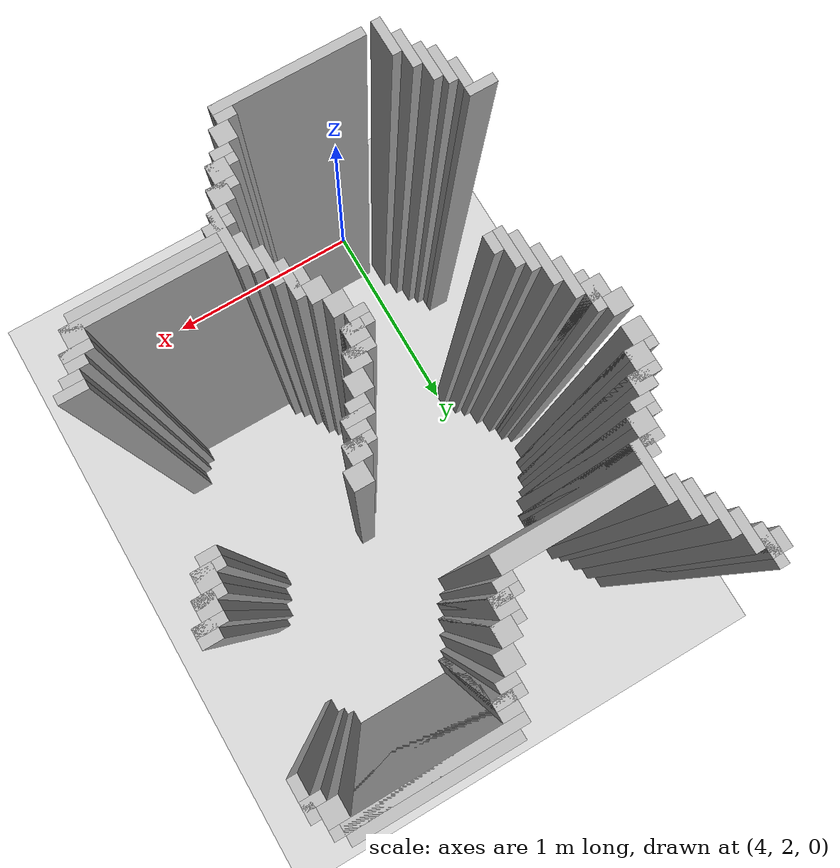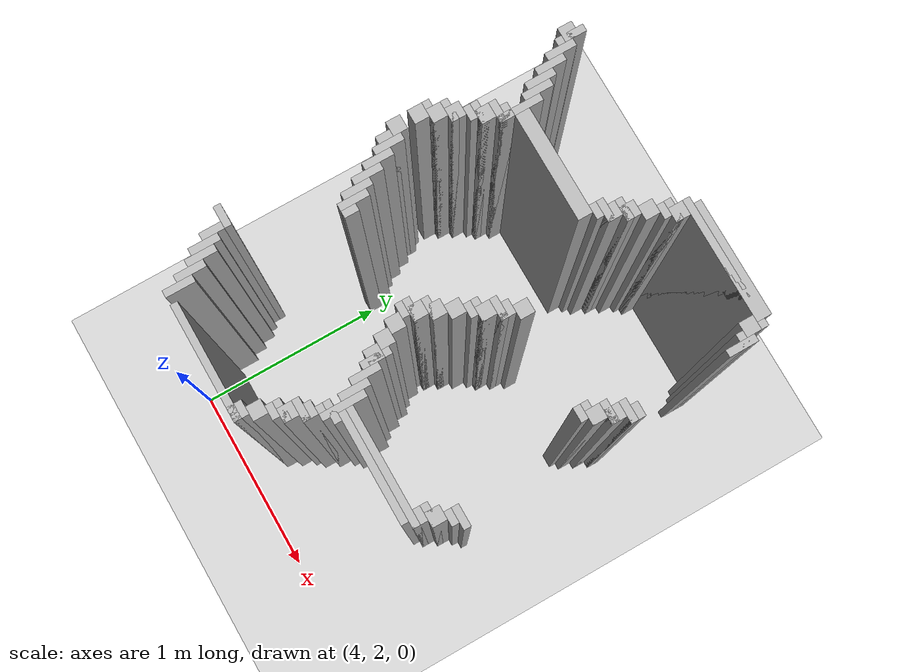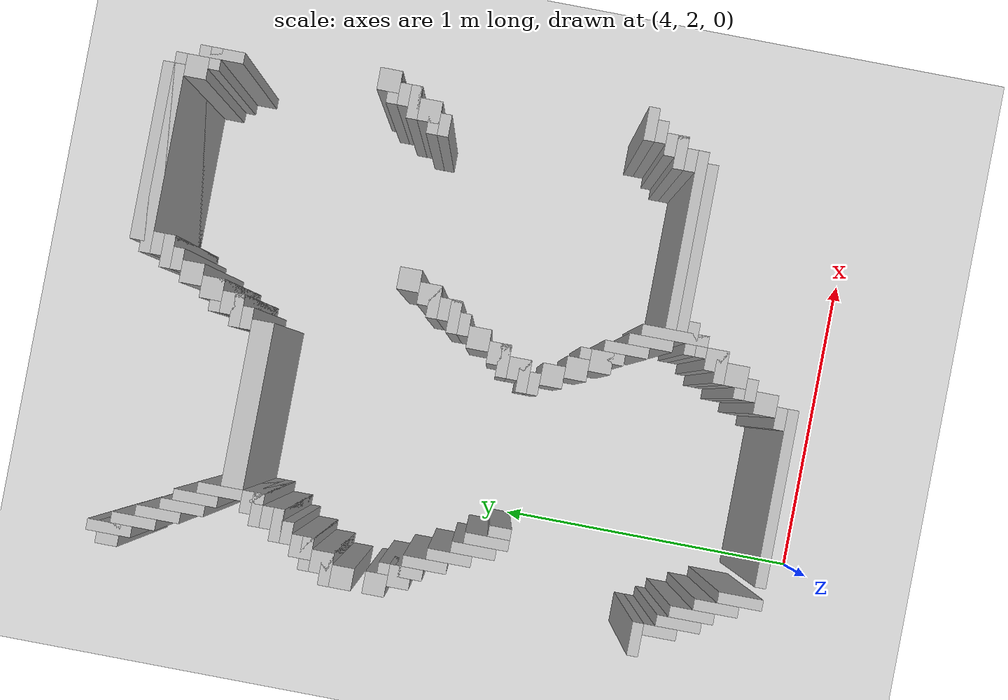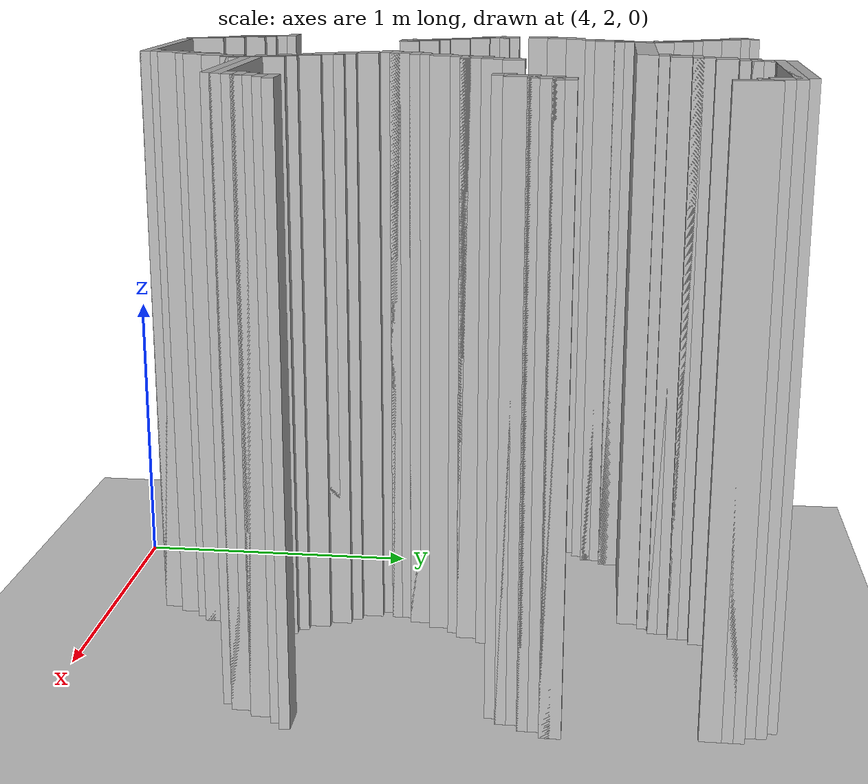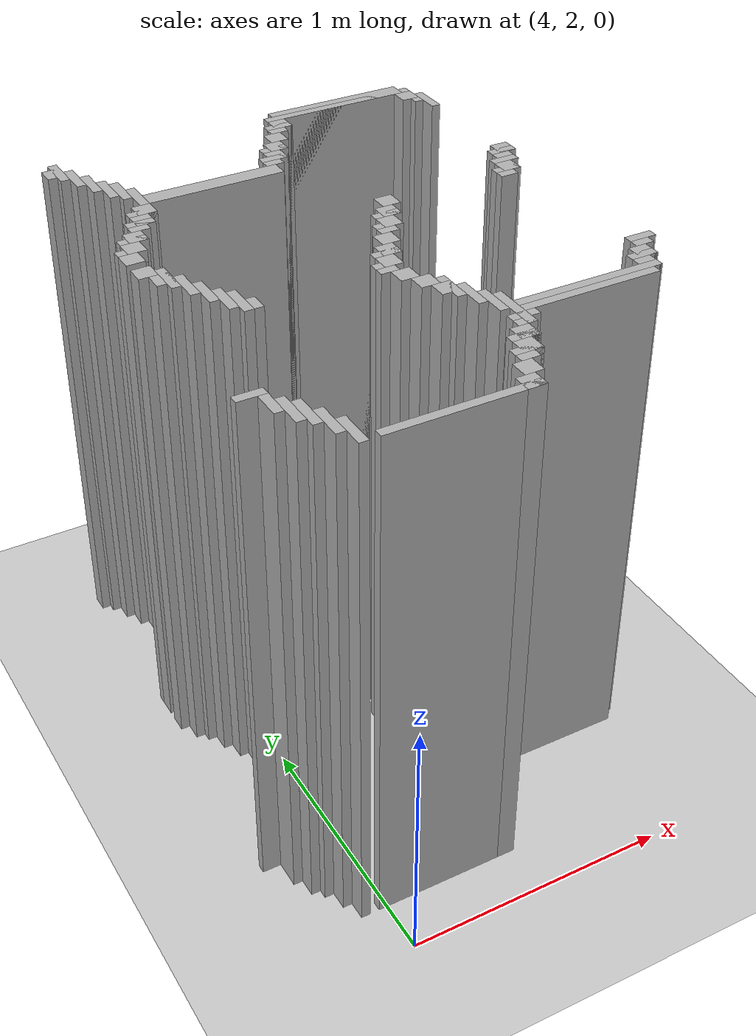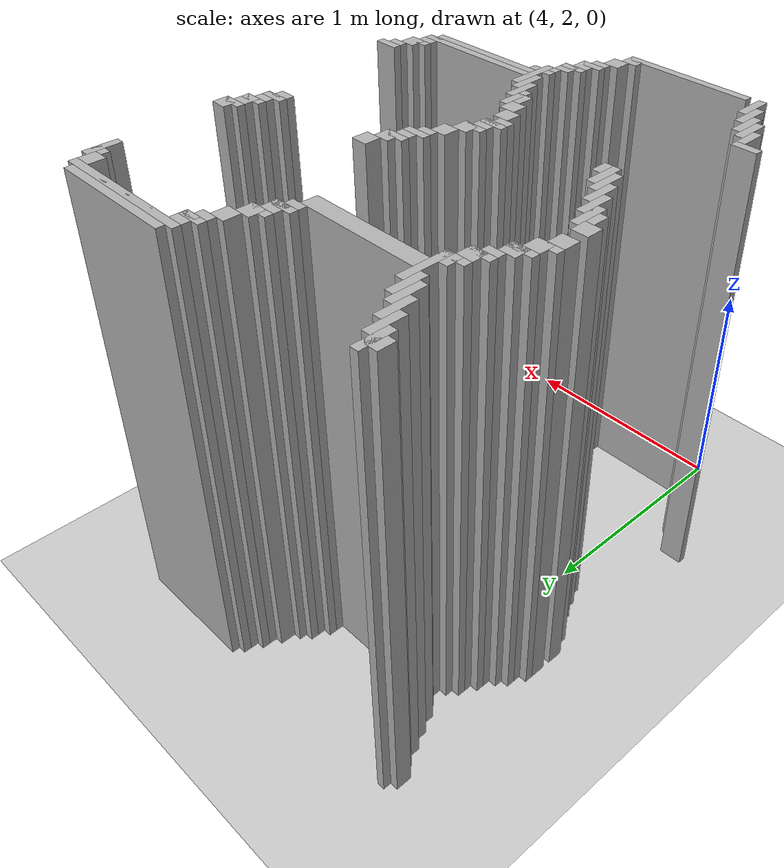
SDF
<sdf version="1.6">
 <world name="slam_world">
  <model name="ground_plane">
   <static>true</static>
   <link name="link">
    <collision name="collision">
     <geometry><plane><normal>0 0 1</normal><size>100 100</size></plane></geometry>
    </collision>
    <visual name="visual">
     <geometry><plane><normal>0 0 1</normal><size>100 100</size></plane></geometry>
     <material>
      <ambient>0.8 0.8 0.8 1</ambient>
      <diffuse>0.8 0.8 0.8 1</diffuse>
      <specular>0.8 0.8 0.8 1</specular>
     </material>
    </visual>
   </link>
  </model>
  <model name="wall_4418">
   <static>true</static>
   <pose>4.94199535962877 4.280742459396752 1.0 0 0 0</pose>
   <link name="link">
    <collision name="collision">
     <geometry><box><size>0.5568445475638051 0.06960556844547564 2.0</size></box></geometry>
    </collision>
    <visual name="visual">
     <geometry><box><size>0.5568445475638051 0.06960556844547564 2.0</size></box></geometry>
     <material><ambient>0.5 0.5 0.5 1</ambient><diffuse>0.7 0.7 0.7 1</diffuse></material>
    </visual>
   </link>
  </model>
  <model name="wall_4431">
   <static>true</static>
   <pose>3.776102088167053 4.211136890951276 1.0 0 0 0</pose>
   <link name="link">
    <collision name="collision">
     <geometry><box><size>0.03480278422273782 0.13921113689095127 2.0</size></box></geometry>
    </collision>
    <visual name="visual">
     <geometry><box><size>0.03480278422273782 0.13921113689095127 2.0</size></box></geometry>
     <material><ambient>0.5 0.5 0.5 1</ambient><diffuse>0.7 0.7 0.7 1</diffuse></material>
    </visual>
   </link>
  </model>
  <model name="wall_4432">
   <static>true</static>
   <pose>4.94199535962877 4.263341067285383 1.0 0 0 0</pose>
   <link name="link">
    <collision name="collision">
     <geometry><box><size>0.6264501160092807 0.03480278422273782 2.0</size></box></geometry>
    </collision>
    <visual name="visual">
     <geometry><box><size>0.6264501160092807 0.03480278422273782 2.0</size></box></geometry>
     <material><ambient>0.5 0.5 0.5 1</ambient><diffuse>0.7 0.7 0.7 1</diffuse></material>
    </visual>
   </link>
  </model>
  <model name="wall_4444">
   <static>true</static>
   <pose>3.7587006960556844 4.211136890951276 1.0 0 0 0</pose>
   <link name="link">
    <collision name="collision">
     <geometry><box><size>0.06960556844547564 0.06960556844547564 2.0</size></box></geometry>
    </collision>
    <visual name="visual">
     <geometry><box><size>0.06960556844547564 0.06960556844547564 2.0</size></box></geometry>
     <material><ambient>0.5 0.5 0.5 1</ambient><diffuse>0.7 0.7 0.7 1</diffuse></material>
    </visual>
   </link>
  </model>
  <model name="wall_4445">
   <static>true</static>
   <pose>4.663573085846868 4.211136890951276 1.0 0 0 0</pose>
   <link name="link">
    <collision name="collision">
     <geometry><box><size>0.06960556844547564 0.06960556844547564 2.0</size></box></geometry>
    </collision>
    <visual name="visual">
     <geometry><box><size>0.06960556844547564 0.06960556844547564 2.0</size></box></geometry>
     <material><ambient>0.5 0.5 0.5 1</ambient><diffuse>0.7 0.7 0.7 1</diffuse></material>
    </visual>
   </link>
  </model>
  <model name="wall_4446">
   <static>true</static>
   <pose>5.220417633410673 4.211136890951276 1.0 0 0 0</pose>
   <link name="link">
    <collision name="collision">
     <geometry><box><size>0.06960556844547564 0.06960556844547564 2.0</size></box></geometry>
    </collision>
    <visual name="visual">
     <geometry><box><size>0.06960556844547564 0.06960556844547564 2.0</size></box></geometry>
     <material><ambient>0.5 0.5 0.5 1</ambient><diffuse>0.7 0.7 0.7 1</diffuse></material>
    </visual>
   </link>
  </model>
  <model name="wall_4459">
   <static>true</static>
   <pose>3.810904872389791 4.1415313225058 1.0 0 0 0</pose>
   <link name="link">
    <collision name="collision">
     <geometry><box><size>0.03480278422273782 0.13921113689095127 2.0</size></box></geometry>
    </collision>
    <visual name="visual">
     <geometry><box><size>0.03480278422273782 0.13921113689095127 2.0</size></box></geometry>
     <material><ambient>0.5 0.5 0.5 1</ambient><diffuse>0.7 0.7 0.7 1</diffuse></material>
    </visual>
   </link>
  </model>
  <model name="wall_4460">
   <static>true</static>
   <pose>4.646171693735498 4.193735498839907 1.0 0 0 0</pose>
   <link name="link">
    <collision name="collision">
     <geometry><box><size>0.10440835266821345 0.03480278422273782 2.0</size></box></geometry>
    </collision>
    <visual name="visual">
     <geometry><box><size>0.10440835266821345 0.03480278422273782 2.0</size></box></geometry>
     <material><ambient>0.5 0.5 0.5 1</ambient><diffuse>0.7 0.7 0.7 1</diffuse></material>
    </visual>
   </link>
  </model>
  <model name="wall_4461">
   <static>true</static>
   <pose>5.27262180974478 4.1415313225058 1.0 0 0 0</pose>
   <link name="link">
    <collision name="collision">
     <geometry><box><size>0.03480278422273782 0.13921113689095127 2.0</size></box></geometry>
    </collision>
    <visual name="visual">
     <geometry><box><size>0.03480278422273782 0.13921113689095127 2.0</size></box></geometry>
     <material><ambient>0.5 0.5 0.5 1</ambient><diffuse>0.7 0.7 0.7 1</diffuse></material>
    </visual>
   </link>
  </model>
  <model name="wall_4474">
   <static>true</static>
   <pose>4.6287703016241295 4.158932714617169 1.0 0 0 0</pose>
   <link name="link">
    <collision name="collision">
     <geometry><box><size>0.06960556844547564 0.03480278422273782 2.0</size></box></geometry>
    </collision>
    <visual name="visual">
     <geometry><box><size>0.06960556844547564 0.03480278422273782 2.0</size></box></geometry>
     <material><ambient>0.5 0.5 0.5 1</ambient><diffuse>0.7 0.7 0.7 1</diffuse></material>
    </visual>
   </link>
  </model>
  <model name="wall_4475">
   <static>true</static>
   <pose>5.25522041763341 4.158932714617169 1.0 0 0 0</pose>
   <link name="link">
    <collision name="collision">
     <geometry><box><size>0.06960556844547564 0.03480278422273782 2.0</size></box></geometry>
    </collision>
    <visual name="visual">
     <geometry><box><size>0.06960556844547564 0.03480278422273782 2.0</size></box></geometry>
     <material><ambient>0.5 0.5 0.5 1</ambient><diffuse>0.7 0.7 0.7 1</diffuse></material>
    </visual>
   </link>
  </model>
  <model name="wall_4484">
   <static>true</static>
   <pose>3.845707656612529 4.071925754060325 1.0 0 0 0</pose>
   <link name="link">
    <collision name="collision">
     <geometry><box><size>0.03480278422273782 0.13921113689095127 2.0</size></box></geometry>
    </collision>
    <visual name="visual">
     <geometry><box><size>0.03480278422273782 0.13921113689095127 2.0</size></box></geometry>
     <material><ambient>0.5 0.5 0.5 1</ambient><diffuse>0.7 0.7 0.7 1</diffuse></material>
    </visual>
   </link>
  </model>
  <model name="wall_4485">
   <static>true</static>
   <pose>4.593967517401392 4.106728538283062 1.0 0 0 0</pose>
   <link name="link">
    <collision name="collision">
     <geometry><box><size>0.06960556844547564 0.06960556844547564 2.0</size></box></geometry>
    </collision>
    <visual name="visual">
     <geometry><box><size>0.06960556844547564 0.06960556844547564 2.0</size></box></geometry>
     <material><ambient>0.5 0.5 0.5 1</ambient><diffuse>0.7 0.7 0.7 1</diffuse></material>
    </visual>
   </link>
  </model>
  <model name="wall_4499">
   <static>true</static>
   <pose>3.8805104408352666 4.002320185614849 1.0 0 0 0</pose>
   <link name="link">
    <collision name="collision">
     <geometry><box><size>0.03480278422273782 0.13921113689095127 2.0</size></box></geometry>
    </collision>
    <visual name="visual">
     <geometry><box><size>0.03480278422273782 0.13921113689095127 2.0</size></box></geometry>
     <material><ambient>0.5 0.5 0.5 1</ambient><diffuse>0.7 0.7 0.7 1</diffuse></material>
    </visual>
   </link>
  </model>
  <model name="wall_4500">
   <static>true</static>
   <pose>4.559164733178654 4.037122969837587 1.0 0 0 0</pose>
   <link name="link">
    <collision name="collision">
     <geometry><box><size>0.06960556844547564 0.06960556844547564 2.0</size></box></geometry>
    </collision>
    <visual name="visual">
     <geometry><box><size>0.06960556844547564 0.06960556844547564 2.0</size></box></geometry>
     <material><ambient>0.5 0.5 0.5 1</ambient><diffuse>0.7 0.7 0.7 1</diffuse></material>
    </visual>
   </link>
  </model>
  <model name="wall_4514">
   <static>true</static>
   <pose>3.9153132250580045 3.967517401392111 1.0 0 0 0</pose>
   <link name="link">
    <collision name="collision">
     <geometry><box><size>0.03480278422273782 0.13921113689095127 2.0</size></box></geometry>
    </collision>
    <visual name="visual">
     <geometry><box><size>0.03480278422273782 0.13921113689095127 2.0</size></box></geometry>
     <material><ambient>0.5 0.5 0.5 1</ambient><diffuse>0.7 0.7 0.7 1</diffuse></material>
    </visual>
   </link>
  </model>
  <model name="wall_4515">
   <static>true</static>
   <pose>4.541763341067285 4.019721577726218 1.0 0 0 0</pose>
   <link name="link">
    <collision name="collision">
     <geometry><box><size>0.10440835266821345 0.03480278422273782 2.0</size></box></geometry>
    </collision>
    <visual name="visual">
     <geometry><box><size>0.10440835266821345 0.03480278422273782 2.0</size></box></geometry>
     <material><ambient>0.5 0.5 0.5 1</ambient><diffuse>0.7 0.7 0.7 1</diffuse></material>
    </visual>
   </link>
  </model>
  <model name="wall_4529">
   <static>true</static>
   <pose>4.524361948955916 3.967517401392111 1.0 0 0 0</pose>
   <link name="link">
    <collision name="collision">
     <geometry><box><size>0.06960556844547564 0.06960556844547564 2.0</size></box></geometry>
    </collision>
    <visual name="visual">
     <geometry><box><size>0.06960556844547564 0.06960556844547564 2.0</size></box></geometry>
     <material><ambient>0.5 0.5 0.5 1</ambient><diffuse>0.7 0.7 0.7 1</diffuse></material>
    </visual>
   </link>
  </model>
  <model name="wall_4537">
   <static>true</static>
   <pose>3.9501160092807424 3.863109048723898 1.0 0 0 0</pose>
   <link name="link">
    <collision name="collision">
     <geometry><box><size>0.03480278422273782 0.2088167053364269 2.0</size></box></geometry>
    </collision>
    <visual name="visual">
     <geometry><box><size>0.03480278422273782 0.2088167053364269 2.0</size></box></geometry>
     <material><ambient>0.5 0.5 0.5 1</ambient><diffuse>0.7 0.7 0.7 1</diffuse></material>
    </visual>
   </link>
  </model>
  <model name="wall_4538">
   <static>true</static>
   <pose>4.506960556844548 3.9501160092807424 1.0 0 0 0</pose>
   <link name="link">
    <collision name="collision">
     <geometry><box><size>0.10440835266821345 0.03480278422273782 2.0</size></box></geometry>
    </collision>
    <visual name="visual">
     <geometry><box><size>0.10440835266821345 0.03480278422273782 2.0</size></box></geometry>
     <material><ambient>0.5 0.5 0.5 1</ambient><diffuse>0.7 0.7 0.7 1</diffuse></material>
    </visual>
   </link>
  </model>
  <model name="wall_4552">
   <static>true</static>
   <pose>4.489559164733178 3.9153132250580045 1.0 0 0 0</pose>
   <link name="link">
    <collision name="collision">
     <geometry><box><size>0.06960556844547564 0.03480278422273782 2.0</size></box></geometry>
    </collision>
    <visual name="visual">
     <geometry><box><size>0.06960556844547564 0.03480278422273782 2.0</size></box></geometry>
     <material><ambient>0.5 0.5 0.5 1</ambient><diffuse>0.7 0.7 0.7 1</diffuse></material>
    </visual>
   </link>
  </model>
  <model name="wall_4561">
   <static>true</static>
   <pose>4.228538283062645 3.863109048723898 1.0 0 0 0</pose>
   <link name="link">
    <collision name="collision">
     <geometry><box><size>0.5220417633410672 0.06960556844547564 2.0</size></box></geometry>
    </collision>
    <visual name="visual">
     <geometry><box><size>0.5220417633410672 0.06960556844547564 2.0</size></box></geometry>
     <material><ambient>0.5 0.5 0.5 1</ambient><diffuse>0.7 0.7 0.7 1</diffuse></material>
    </visual>
   </link>
  </model>
  <model name="wall_4575">
   <static>true</static>
   <pose>3.932714617169373 3.793503480278422 1.0 0 0 0</pose>
   <link name="link">
    <collision name="collision">
     <geometry><box><size>0.06960556844547564 0.06960556844547564 2.0</size></box></geometry>
    </collision>
    <visual name="visual">
     <geometry><box><size>0.06960556844547564 0.06960556844547564 2.0</size></box></geometry>
     <material><ambient>0.5 0.5 0.5 1</ambient><diffuse>0.7 0.7 0.7 1</diffuse></material>
    </visual>
   </link>
  </model>
  <model name="wall_4589">
   <static>true</static>
   <pose>3.9153132250580045 3.776102088167053 1.0 0 0 0</pose>
   <link name="link">
    <collision name="collision">
     <geometry><box><size>0.10440835266821345 0.03480278422273782 2.0</size></box></geometry>
    </collision>
    <visual name="visual">
     <geometry><box><size>0.10440835266821345 0.03480278422273782 2.0</size></box></geometry>
     <material><ambient>0.5 0.5 0.5 1</ambient><diffuse>0.7 0.7 0.7 1</diffuse></material>
    </visual>
   </link>
  </model>
  <model name="wall_4603">
   <static>true</static>
   <pose>3.897911832946636 3.7238979118329465 1.0 0 0 0</pose>
   <link name="link">
    <collision name="collision">
     <geometry><box><size>0.06960556844547564 0.06960556844547564 2.0</size></box></geometry>
    </collision>
    <visual name="visual">
     <geometry><box><size>0.06960556844547564 0.06960556844547564 2.0</size></box></geometry>
     <material><ambient>0.5 0.5 0.5 1</ambient><diffuse>0.7 0.7 0.7 1</diffuse></material>
    </visual>
   </link>
  </model>
  <model name="wall_4617">
   <static>true</static>
   <pose>3.8805104408352666 3.706496519721578 1.0 0 0 0</pose>
   <link name="link">
    <collision name="collision">
     <geometry><box><size>0.10440835266821345 0.03480278422273782 2.0</size></box></geometry>
    </collision>
    <visual name="visual">
     <geometry><box><size>0.10440835266821345 0.03480278422273782 2.0</size></box></geometry>
     <material><ambient>0.5 0.5 0.5 1</ambient><diffuse>0.7 0.7 0.7 1</diffuse></material>
    </visual>
   </link>
  </model>
  <model name="wall_4629">
   <static>true</static>
   <pose>3.863109048723898 3.67169373549884 1.0 0 0 0</pose>
   <link name="link">
    <collision name="collision">
     <geometry><box><size>0.06960556844547564 0.03480278422273782 2.0</size></box></geometry>
    </collision>
    <visual name="visual">
     <geometry><box><size>0.06960556844547564 0.03480278422273782 2.0</size></box></geometry>
     <material><ambient>0.5 0.5 0.5 1</ambient><diffuse>0.7 0.7 0.7 1</diffuse></material>
    </visual>
   </link>
  </model>
  <model name="wall_4640">
   <static>true</static>
   <pose>3.82830626450116 3.619489559164733 1.0 0 0 0</pose>
   <link name="link">
    <collision name="collision">
     <geometry><box><size>0.06960556844547564 0.06960556844547564 2.0</size></box></geometry>
    </collision>
    <visual name="visual">
     <geometry><box><size>0.06960556844547564 0.06960556844547564 2.0</size></box></geometry>
     <material><ambient>0.5 0.5 0.5 1</ambient><diffuse>0.7 0.7 0.7 1</diffuse></material>
    </visual>
   </link>
  </model>
  <model name="wall_4641">
   <static>true</static>
   <pose>5.290023201856148 3.619489559164733 1.0 0 0 0</pose>
   <link name="link">
    <collision name="collision">
     <geometry><box><size>0.06960556844547564 0.06960556844547564 2.0</size></box></geometry>
    </collision>
    <visual name="visual">
     <geometry><box><size>0.06960556844547564 0.06960556844547564 2.0</size></box></geometry>
     <material><ambient>0.5 0.5 0.5 1</ambient><diffuse>0.7 0.7 0.7 1</diffuse></material>
    </visual>
   </link>
  </model>
  <model name="wall_4652">
   <static>true</static>
   <pose>3.810904872389791 3.602088167053364 1.0 0 0 0</pose>
   <link name="link">
    <collision name="collision">
     <geometry><box><size>0.10440835266821345 0.03480278422273782 2.0</size></box></geometry>
    </collision>
    <visual name="visual">
     <geometry><box><size>0.10440835266821345 0.03480278422273782 2.0</size></box></geometry>
     <material><ambient>0.5 0.5 0.5 1</ambient><diffuse>0.7 0.7 0.7 1</diffuse></material>
    </visual>
   </link>
  </model>
  <model name="wall_4653">
   <static>true</static>
   <pose>5.27262180974478 3.602088167053364 1.0 0 0 0</pose>
   <link name="link">
    <collision name="collision">
     <geometry><box><size>0.10440835266821345 0.03480278422273782 2.0</size></box></geometry>
    </collision>
    <visual name="visual">
     <geometry><box><size>0.10440835266821345 0.03480278422273782 2.0</size></box></geometry>
     <material><ambient>0.5 0.5 0.5 1</ambient><diffuse>0.7 0.7 0.7 1</diffuse></material>
    </visual>
   </link>
  </model>
  <model name="wall_4663">
   <static>true</static>
   <pose>3.793503480278422 3.549883990719257 1.0 0 0 0</pose>
   <link name="link">
    <collision name="collision">
     <geometry><box><size>0.06960556844547564 0.06960556844547564 2.0</size></box></geometry>
    </collision>
    <visual name="visual">
     <geometry><box><size>0.06960556844547564 0.06960556844547564 2.0</size></box></geometry>
     <material><ambient>0.5 0.5 0.5 1</ambient><diffuse>0.7 0.7 0.7 1</diffuse></material>
    </visual>
   </link>
  </model>
  <model name="wall_4664">
   <static>true</static>
   <pose>5.25522041763341 3.549883990719257 1.0 0 0 0</pose>
   <link name="link">
    <collision name="collision">
     <geometry><box><size>0.06960556844547564 0.06960556844547564 2.0</size></box></geometry>
    </collision>
    <visual name="visual">
     <geometry><box><size>0.06960556844547564 0.06960556844547564 2.0</size></box></geometry>
     <material><ambient>0.5 0.5 0.5 1</ambient><diffuse>0.7 0.7 0.7 1</diffuse></material>
    </visual>
   </link>
  </model>
  <model name="wall_4677">
   <static>true</static>
   <pose>3.776102088167053 3.5324825986078885 1.0 0 0 0</pose>
   <link name="link">
    <collision name="collision">
     <geometry><box><size>0.10440835266821345 0.03480278422273782 2.0</size></box></geometry>
    </collision>
    <visual name="visual">
     <geometry><box><size>0.10440835266821345 0.03480278422273782 2.0</size></box></geometry>
     <material><ambient>0.5 0.5 0.5 1</ambient><diffuse>0.7 0.7 0.7 1</diffuse></material>
    </visual>
   </link>
  </model>
  <model name="wall_4678">
   <static>true</static>
   <pose>5.237819025522041 3.5324825986078885 1.0 0 0 0</pose>
   <link name="link">
    <collision name="collision">
     <geometry><box><size>0.10440835266821345 0.03480278422273782 2.0</size></box></geometry>
    </collision>
    <visual name="visual">
     <geometry><box><size>0.10440835266821345 0.03480278422273782 2.0</size></box></geometry>
     <material><ambient>0.5 0.5 0.5 1</ambient><diffuse>0.7 0.7 0.7 1</diffuse></material>
    </visual>
   </link>
  </model>
  <model name="wall_4689">
   <static>true</static>
   <pose>3.7587006960556844 3.480278422273782 1.0 0 0 0</pose>
   <link name="link">
    <collision name="collision">
     <geometry><box><size>0.06960556844547564 0.06960556844547564 2.0</size></box></geometry>
    </collision>
    <visual name="visual">
     <geometry><box><size>0.06960556844547564 0.06960556844547564 2.0</size></box></geometry>
     <material><ambient>0.5 0.5 0.5 1</ambient><diffuse>0.7 0.7 0.7 1</diffuse></material>
    </visual>
   </link>
  </model>
  <model name="wall_4690">
   <static>true</static>
   <pose>5.220417633410673 3.480278422273782 1.0 0 0 0</pose>
   <link name="link">
    <collision name="collision">
     <geometry><box><size>0.06960556844547564 0.06960556844547564 2.0</size></box></geometry>
    </collision>
    <visual name="visual">
     <geometry><box><size>0.06960556844547564 0.06960556844547564 2.0</size></box></geometry>
     <material><ambient>0.5 0.5 0.5 1</ambient><diffuse>0.7 0.7 0.7 1</diffuse></material>
    </visual>
   </link>
  </model>
  <model name="wall_4700">
   <static>true</static>
   <pose>4.698375870069605 3.445475638051044 1.0 0 0 0</pose>
   <link name="link">
    <collision name="collision">
     <geometry><box><size>0.06960556844547564 0.06960556844547564 2.0</size></box></geometry>
    </collision>
    <visual name="visual">
     <geometry><box><size>0.06960556844547564 0.06960556844547564 2.0</size></box></geometry>
     <material><ambient>0.5 0.5 0.5 1</ambient><diffuse>0.7 0.7 0.7 1</diffuse></material>
    </visual>
   </link>
  </model>
  <model name="wall_4701">
   <static>true</static>
   <pose>5.203016241299304 3.4628770301624128 1.0 0 0 0</pose>
   <link name="link">
    <collision name="collision">
     <geometry><box><size>0.10440835266821345 0.03480278422273782 2.0</size></box></geometry>
    </collision>
    <visual name="visual">
     <geometry><box><size>0.10440835266821345 0.03480278422273782 2.0</size></box></geometry>
     <material><ambient>0.5 0.5 0.5 1</ambient><diffuse>0.7 0.7 0.7 1</diffuse></material>
    </visual>
   </link>
  </model>
  <model name="wall_4713">
   <static>true</static>
   <pose>5.185614849187935 3.428074245939675 1.0 0 0 0</pose>
   <link name="link">
    <collision name="collision">
     <geometry><box><size>0.06960556844547564 0.03480278422273782 2.0</size></box></geometry>
    </collision>
    <visual name="visual">
     <geometry><box><size>0.06960556844547564 0.03480278422273782 2.0</size></box></geometry>
     <material><ambient>0.5 0.5 0.5 1</ambient><diffuse>0.7 0.7 0.7 1</diffuse></material>
    </visual>
   </link>
  </model>
  <model name="wall_4722">
   <static>true</static>
   <pose>3.7587006960556844 3.3758700696055683 1.0 0 0 0</pose>
   <link name="link">
    <collision name="collision">
     <geometry><box><size>0.06960556844547564 0.06960556844547564 2.0</size></box></geometry>
    </collision>
    <visual name="visual">
     <geometry><box><size>0.06960556844547564 0.06960556844547564 2.0</size></box></geometry>
     <material><ambient>0.5 0.5 0.5 1</ambient><diffuse>0.7 0.7 0.7 1</diffuse></material>
    </visual>
   </link>
  </model>
  <model name="wall_4723">
   <static>true</static>
   <pose>4.663573085846868 3.3758700696055683 1.0 0 0 0</pose>
   <link name="link">
    <collision name="collision">
     <geometry><box><size>0.06960556844547564 0.06960556844547564 2.0</size></box></geometry>
    </collision>
    <visual name="visual">
     <geometry><box><size>0.06960556844547564 0.06960556844547564 2.0</size></box></geometry>
     <material><ambient>0.5 0.5 0.5 1</ambient><diffuse>0.7 0.7 0.7 1</diffuse></material>
    </visual>
   </link>
  </model>
  <model name="wall_4736">
   <static>true</static>
   <pose>3.810904872389791 3.3062645011600926 1.0 0 0 0</pose>
   <link name="link">
    <collision name="collision">
     <geometry><box><size>0.03480278422273782 0.13921113689095127 2.0</size></box></geometry>
    </collision>
    <visual name="visual">
     <geometry><box><size>0.03480278422273782 0.13921113689095127 2.0</size></box></geometry>
     <material><ambient>0.5 0.5 0.5 1</ambient><diffuse>0.7 0.7 0.7 1</diffuse></material>
    </visual>
   </link>
  </model>
  <model name="wall_4737">
   <static>true</static>
   <pose>4.646171693735498 3.358468677494199 1.0 0 0 0</pose>
   <link name="link">
    <collision name="collision">
     <geometry><box><size>0.10440835266821345 0.03480278422273782 2.0</size></box></geometry>
    </collision>
    <visual name="visual">
     <geometry><box><size>0.10440835266821345 0.03480278422273782 2.0</size></box></geometry>
     <material><ambient>0.5 0.5 0.5 1</ambient><diffuse>0.7 0.7 0.7 1</diffuse></material>
    </visual>
   </link>
  </model>
  <model name="wall_4750">
   <static>true</static>
   <pose>3.793503480278422 3.3062645011600926 1.0 0 0 0</pose>
   <link name="link">
    <collision name="collision">
     <geometry><box><size>0.06960556844547564 0.06960556844547564 2.0</size></box></geometry>
    </collision>
    <visual name="visual">
     <geometry><box><size>0.06960556844547564 0.06960556844547564 2.0</size></box></geometry>
     <material><ambient>0.5 0.5 0.5 1</ambient><diffuse>0.7 0.7 0.7 1</diffuse></material>
    </visual>
   </link>
  </model>
  <model name="wall_4751">
   <static>true</static>
   <pose>4.6287703016241295 3.3062645011600926 1.0 0 0 0</pose>
   <link name="link">
    <collision name="collision">
     <geometry><box><size>0.06960556844547564 0.06960556844547564 2.0</size></box></geometry>
    </collision>
    <visual name="visual">
     <geometry><box><size>0.06960556844547564 0.06960556844547564 2.0</size></box></geometry>
     <material><ambient>0.5 0.5 0.5 1</ambient><diffuse>0.7 0.7 0.7 1</diffuse></material>
    </visual>
   </link>
  </model>
  <model name="wall_4764">
   <static>true</static>
   <pose>3.845707656612529 3.236658932714617 1.0 0 0 0</pose>
   <link name="link">
    <collision name="collision">
     <geometry><box><size>0.03480278422273782 0.13921113689095127 2.0</size></box></geometry>
    </collision>
    <visual name="visual">
     <geometry><box><size>0.03480278422273782 0.13921113689095127 2.0</size></box></geometry>
     <material><ambient>0.5 0.5 0.5 1</ambient><diffuse>0.7 0.7 0.7 1</diffuse></material>
    </visual>
   </link>
  </model>
  <model name="wall_4765">
   <static>true</static>
   <pose>4.611368909512761 3.288863109048724 1.0 0 0 0</pose>
   <link name="link">
    <collision name="collision">
     <geometry><box><size>0.10440835266821345 0.03480278422273782 2.0</size></box></geometry>
    </collision>
    <visual name="visual">
     <geometry><box><size>0.10440835266821345 0.03480278422273782 2.0</size></box></geometry>
     <material><ambient>0.5 0.5 0.5 1</ambient><diffuse>0.7 0.7 0.7 1</diffuse></material>
    </visual>
   </link>
  </model>
  <model name="wall_4777">
   <static>true</static>
   <pose>4.593967517401392 3.254060324825986 1.0 0 0 0</pose>
   <link name="link">
    <collision name="collision">
     <geometry><box><size>0.06960556844547564 0.03480278422273782 2.0</size></box></geometry>
    </collision>
    <visual name="visual">
     <geometry><box><size>0.06960556844547564 0.03480278422273782 2.0</size></box></geometry>
     <material><ambient>0.5 0.5 0.5 1</ambient><diffuse>0.7 0.7 0.7 1</diffuse></material>
    </visual>
   </link>
  </model>
  <model name="wall_4785">
   <static>true</static>
   <pose>3.8805104408352666 3.167053364269141 1.0 0 0 0</pose>
   <link name="link">
    <collision name="collision">
     <geometry><box><size>0.03480278422273782 0.13921113689095127 2.0</size></box></geometry>
    </collision>
    <visual name="visual">
     <geometry><box><size>0.03480278422273782 0.13921113689095127 2.0</size></box></geometry>
     <material><ambient>0.5 0.5 0.5 1</ambient><diffuse>0.7 0.7 0.7 1</diffuse></material>
    </visual>
   </link>
  </model>
  <model name="wall_4786">
   <static>true</static>
   <pose>4.559164733178654 3.201856148491879 1.0 0 0 0</pose>
   <link name="link">
    <collision name="collision">
     <geometry><box><size>0.06960556844547564 0.06960556844547564 2.0</size></box></geometry>
    </collision>
    <visual name="visual">
     <geometry><box><size>0.06960556844547564 0.06960556844547564 2.0</size></box></geometry>
     <material><ambient>0.5 0.5 0.5 1</ambient><diffuse>0.7 0.7 0.7 1</diffuse></material>
    </visual>
   </link>
  </model>
  <model name="wall_4799">
   <static>true</static>
   <pose>3.9153132250580045 3.097447795823666 1.0 0 0 0</pose>
   <link name="link">
    <collision name="collision">
     <geometry><box><size>0.03480278422273782 0.13921113689095127 2.0</size></box></geometry>
    </collision>
    <visual name="visual">
     <geometry><box><size>0.03480278422273782 0.13921113689095127 2.0</size></box></geometry>
     <material><ambient>0.5 0.5 0.5 1</ambient><diffuse>0.7 0.7 0.7 1</diffuse></material>
    </visual>
   </link>
  </model>
  <model name="wall_4800">
   <static>true</static>
   <pose>4.524361948955916 3.1322505800464038 1.0 0 0 0</pose>
   <link name="link">
    <collision name="collision">
     <geometry><box><size>0.06960556844547564 0.06960556844547564 2.0</size></box></geometry>
    </collision>
    <visual name="visual">
     <geometry><box><size>0.06960556844547564 0.06960556844547564 2.0</size></box></geometry>
     <material><ambient>0.5 0.5 0.5 1</ambient><diffuse>0.7 0.7 0.7 1</diffuse></material>
    </visual>
   </link>
  </model>
  <model name="wall_4813">
   <static>true</static>
   <pose>3.9501160092807424 3.062645011600928 1.0 0 0 0</pose>
   <link name="link">
    <collision name="collision">
     <geometry><box><size>0.03480278422273782 0.13921113689095127 2.0</size></box></geometry>
    </collision>
    <visual name="visual">
     <geometry><box><size>0.03480278422273782 0.13921113689095127 2.0</size></box></geometry>
     <material><ambient>0.5 0.5 0.5 1</ambient><diffuse>0.7 0.7 0.7 1</diffuse></material>
    </visual>
   </link>
  </model>
  <model name="wall_4814">
   <static>true</static>
   <pose>4.506960556844548 3.1148491879350346 1.0 0 0 0</pose>
   <link name="link">
    <collision name="collision">
     <geometry><box><size>0.10440835266821345 0.03480278422273782 2.0</size></box></geometry>
    </collision>
    <visual name="visual">
     <geometry><box><size>0.10440835266821345 0.03480278422273782 2.0</size></box></geometry>
     <material><ambient>0.5 0.5 0.5 1</ambient><diffuse>0.7 0.7 0.7 1</diffuse></material>
    </visual>
   </link>
  </model>
  <model name="wall_4826">
   <static>true</static>
   <pose>4.489559164733178 3.062645011600928 1.0 0 0 0</pose>
   <link name="link">
    <collision name="collision">
     <geometry><box><size>0.06960556844547564 0.06960556844547564 2.0</size></box></geometry>
    </collision>
    <visual name="visual">
     <geometry><box><size>0.06960556844547564 0.06960556844547564 2.0</size></box></geometry>
     <material><ambient>0.5 0.5 0.5 1</ambient><diffuse>0.7 0.7 0.7 1</diffuse></material>
    </visual>
   </link>
  </model>
  <model name="wall_4834">
   <static>true</static>
   <pose>3.98491879350348 3.02784222737819 1.0 0 0 0</pose>
   <link name="link">
    <collision name="collision">
     <geometry><box><size>0.03480278422273782 0.06960556844547564 2.0</size></box></geometry>
    </collision>
    <visual name="visual">
     <geometry><box><size>0.03480278422273782 0.06960556844547564 2.0</size></box></geometry>
     <material><ambient>0.5 0.5 0.5 1</ambient><diffuse>0.7 0.7 0.7 1</diffuse></material>
    </visual>
   </link>
  </model>
  <model name="wall_4835">
   <static>true</static>
   <pose>4.472157772621809 3.045243619489559 1.0 0 0 0</pose>
   <link name="link">
    <collision name="collision">
     <geometry><box><size>0.10440835266821345 0.03480278422273782 2.0</size></box></geometry>
    </collision>
    <visual name="visual">
     <geometry><box><size>0.10440835266821345 0.03480278422273782 2.0</size></box></geometry>
     <material><ambient>0.5 0.5 0.5 1</ambient><diffuse>0.7 0.7 0.7 1</diffuse></material>
    </visual>
   </link>
  </model>
  <model name="wall_4849">
   <static>true</static>
   <pose>4.454756380510441 3.010440835266821 1.0 0 0 0</pose>
   <link name="link">
    <collision name="collision">
     <geometry><box><size>0.06960556844547564 0.03480278422273782 2.0</size></box></geometry>
    </collision>
    <visual name="visual">
     <geometry><box><size>0.06960556844547564 0.03480278422273782 2.0</size></box></geometry>
     <material><ambient>0.5 0.5 0.5 1</ambient><diffuse>0.7 0.7 0.7 1</diffuse></material>
    </visual>
   </link>
  </model>
  <model name="wall_4858">
   <static>true</static>
   <pose>4.489559164733178 2.9582366589327145 1.0 0 0 0</pose>
   <link name="link">
    <collision name="collision">
     <geometry><box><size>0.06960556844547564 0.06960556844547564 2.0</size></box></geometry>
    </collision>
    <visual name="visual">
     <geometry><box><size>0.06960556844547564 0.06960556844547564 2.0</size></box></geometry>
     <material><ambient>0.5 0.5 0.5 1</ambient><diffuse>0.7 0.7 0.7 1</diffuse></material>
    </visual>
   </link>
  </model>
  <model name="wall_4876">
   <static>true</static>
   <pose>4.524361948955916 2.8886310904872388 1.0 0 0 0</pose>
   <link name="link">
    <collision name="collision">
     <geometry><box><size>0.06960556844547564 0.06960556844547564 2.0</size></box></geometry>
    </collision>
    <visual name="visual">
     <geometry><box><size>0.06960556844547564 0.06960556844547564 2.0</size></box></geometry>
     <material><ambient>0.5 0.5 0.5 1</ambient><diffuse>0.7 0.7 0.7 1</diffuse></material>
    </visual>
   </link>
  </model>
  <model name="wall_4892">
   <static>true</static>
   <pose>4.576566125290023 2.819025522041763 1.0 0 0 0</pose>
   <link name="link">
    <collision name="collision">
     <geometry><box><size>0.03480278422273782 0.13921113689095127 2.0</size></box></geometry>
    </collision>
    <visual name="visual">
     <geometry><box><size>0.03480278422273782 0.13921113689095127 2.0</size></box></geometry>
     <material><ambient>0.5 0.5 0.5 1</ambient><diffuse>0.7 0.7 0.7 1</diffuse></material>
    </visual>
   </link>
  </model>
  <model name="wall_4908">
   <static>true</static>
   <pose>4.559164733178654 2.819025522041763 1.0 0 0 0</pose>
   <link name="link">
    <collision name="collision">
     <geometry><box><size>0.06960556844547564 0.06960556844547564 2.0</size></box></geometry>
    </collision>
    <visual name="visual">
     <geometry><box><size>0.06960556844547564 0.06960556844547564 2.0</size></box></geometry>
     <material><ambient>0.5 0.5 0.5 1</ambient><diffuse>0.7 0.7 0.7 1</diffuse></material>
    </visual>
   </link>
  </model>
  <model name="wall_4924">
   <static>true</static>
   <pose>4.611368909512761 2.7494199535962878 1.0 0 0 0</pose>
   <link name="link">
    <collision name="collision">
     <geometry><box><size>0.03480278422273782 0.13921113689095127 2.0</size></box></geometry>
    </collision>
    <visual name="visual">
     <geometry><box><size>0.03480278422273782 0.13921113689095127 2.0</size></box></geometry>
     <material><ambient>0.5 0.5 0.5 1</ambient><diffuse>0.7 0.7 0.7 1</diffuse></material>
    </visual>
   </link>
  </model>
  <model name="wall_4925">
   <static>true</static>
   <pose>5.307424593967517 2.8016241299303943 1.0 0 0 0</pose>
   <link name="link">
    <collision name="collision">
     <geometry><box><size>0.10440835266821345 0.03480278422273782 2.0</size></box></geometry>
    </collision>
    <visual name="visual">
     <geometry><box><size>0.10440835266821345 0.03480278422273782 2.0</size></box></geometry>
     <material><ambient>0.5 0.5 0.5 1</ambient><diffuse>0.7 0.7 0.7 1</diffuse></material>
    </visual>
   </link>
  </model>
  <model name="wall_4937">
   <static>true</static>
   <pose>5.290023201856148 2.7668213457076565 1.0 0 0 0</pose>
   <link name="link">
    <collision name="collision">
     <geometry><box><size>0.06960556844547564 0.03480278422273782 2.0</size></box></geometry>
    </collision>
    <visual name="visual">
     <geometry><box><size>0.06960556844547564 0.03480278422273782 2.0</size></box></geometry>
     <material><ambient>0.5 0.5 0.5 1</ambient><diffuse>0.7 0.7 0.7 1</diffuse></material>
    </visual>
   </link>
  </model>
  <model name="wall_4947">
   <static>true</static>
   <pose>4.646171693735498 2.679814385150812 1.0 0 0 0</pose>
   <link name="link">
    <collision name="collision">
     <geometry><box><size>0.03480278422273782 0.13921113689095127 2.0</size></box></geometry>
    </collision>
    <visual name="visual">
     <geometry><box><size>0.03480278422273782 0.13921113689095127 2.0</size></box></geometry>
     <material><ambient>0.5 0.5 0.5 1</ambient><diffuse>0.7 0.7 0.7 1</diffuse></material>
    </visual>
   </link>
  </model>
  <model name="wall_4948">
   <static>true</static>
   <pose>5.25522041763341 2.71461716937355 1.0 0 0 0</pose>
   <link name="link">
    <collision name="collision">
     <geometry><box><size>0.06960556844547564 0.06960556844547564 2.0</size></box></geometry>
    </collision>
    <visual name="visual">
     <geometry><box><size>0.06960556844547564 0.06960556844547564 2.0</size></box></geometry>
     <material><ambient>0.5 0.5 0.5 1</ambient><diffuse>0.7 0.7 0.7 1</diffuse></material>
    </visual>
   </link>
  </model>
  <model name="wall_4963">
   <static>true</static>
   <pose>4.6809744779582365 2.6102088167053363 1.0 0 0 0</pose>
   <link name="link">
    <collision name="collision">
     <geometry><box><size>0.03480278422273782 0.2088167053364269 2.0</size></box></geometry>
    </collision>
    <visual name="visual">
     <geometry><box><size>0.03480278422273782 0.2088167053364269 2.0</size></box></geometry>
     <material><ambient>0.5 0.5 0.5 1</ambient><diffuse>0.7 0.7 0.7 1</diffuse></material>
    </visual>
   </link>
  </model>
  <model name="wall_4964">
   <static>true</static>
   <pose>5.237819025522041 2.6972157772621808 1.0 0 0 0</pose>
   <link name="link">
    <collision name="collision">
     <geometry><box><size>0.10440835266821345 0.03480278422273782 2.0</size></box></geometry>
    </collision>
    <visual name="visual">
     <geometry><box><size>0.10440835266821345 0.03480278422273782 2.0</size></box></geometry>
     <material><ambient>0.5 0.5 0.5 1</ambient><diffuse>0.7 0.7 0.7 1</diffuse></material>
    </visual>
   </link>
  </model>
  <model name="wall_4976">
   <static>true</static>
   <pose>5.220417633410673 2.645011600928074 1.0 0 0 0</pose>
   <link name="link">
    <collision name="collision">
     <geometry><box><size>0.06960556844547564 0.06960556844547564 2.0</size></box></geometry>
    </collision>
    <visual name="visual">
     <geometry><box><size>0.06960556844547564 0.06960556844547564 2.0</size></box></geometry>
     <material><ambient>0.5 0.5 0.5 1</ambient><diffuse>0.7 0.7 0.7 1</diffuse></material>
    </visual>
   </link>
  </model>
  <model name="wall_4986">
   <static>true</static>
   <pose>4.976798143851508 2.627610208816705 1.0 0 0 0</pose>
   <link name="link">
    <collision name="collision">
     <geometry><box><size>0.5568445475638051 0.03480278422273782 2.0</size></box></geometry>
    </collision>
    <visual name="visual">
     <geometry><box><size>0.5568445475638051 0.03480278422273782 2.0</size></box></geometry>
     <material><ambient>0.5 0.5 0.5 1</ambient><diffuse>0.7 0.7 0.7 1</diffuse></material>
    </visual>
   </link>
  </model>
  <model name="wall_4999">
   <static>true</static>
   <pose>4.959396751740139 2.5928074245939676 1.0 0 0 0</pose>
   <link name="link">
    <collision name="collision">
     <geometry><box><size>0.5220417633410672 0.03480278422273782 2.0</size></box></geometry>
    </collision>
    <visual name="visual">
     <geometry><box><size>0.5220417633410672 0.03480278422273782 2.0</size></box></geometry>
     <material><ambient>0.5 0.5 0.5 1</ambient><diffuse>0.7 0.7 0.7 1</diffuse></material>
    </visual>
   </link>
  </model>
  <model name="wall_5011">
   <static>true</static>
   <pose>3.741299303944315 2.5580046403712298 1.0 0 0 0</pose>
   <link name="link">
    <collision name="collision">
     <geometry><box><size>0.10440835266821345 0.03480278422273782 2.0</size></box></geometry>
    </collision>
    <visual name="visual">
     <geometry><box><size>0.10440835266821345 0.03480278422273782 2.0</size></box></geometry>
     <material><ambient>0.5 0.5 0.5 1</ambient><diffuse>0.7 0.7 0.7 1</diffuse></material>
    </visual>
   </link>
  </model>
  <model name="wall_5012">
   <static>true</static>
   <pose>4.6809744779582365 2.5580046403712298 1.0 0 0 0</pose>
   <link name="link">
    <collision name="collision">
     <geometry><box><size>0.10440835266821345 0.03480278422273782 2.0</size></box></geometry>
    </collision>
    <visual name="visual">
     <geometry><box><size>0.10440835266821345 0.03480278422273782 2.0</size></box></geometry>
     <material><ambient>0.5 0.5 0.5 1</ambient><diffuse>0.7 0.7 0.7 1</diffuse></material>
    </visual>
   </link>
  </model>
  <model name="wall_5024">
   <static>true</static>
   <pose>3.776102088167053 2.488399071925754 1.0 0 0 0</pose>
   <link name="link">
    <collision name="collision">
     <geometry><box><size>0.03480278422273782 0.10440835266821345 2.0</size></box></geometry>
    </collision>
    <visual name="visual">
     <geometry><box><size>0.03480278422273782 0.10440835266821345 2.0</size></box></geometry>
     <material><ambient>0.5 0.5 0.5 1</ambient><diffuse>0.7 0.7 0.7 1</diffuse></material>
    </visual>
   </link>
  </model>
  <model name="wall_5025">
   <static>true</static>
   <pose>4.663573085846868 2.523201856148492 1.0 0 0 0</pose>
   <link name="link">
    <collision name="collision">
     <geometry><box><size>0.06960556844547564 0.03480278422273782 2.0</size></box></geometry>
    </collision>
    <visual name="visual">
     <geometry><box><size>0.06960556844547564 0.03480278422273782 2.0</size></box></geometry>
     <material><ambient>0.5 0.5 0.5 1</ambient><diffuse>0.7 0.7 0.7 1</diffuse></material>
    </visual>
   </link>
  </model>
  <model name="wall_5035">
   <static>true</static>
   <pose>3.810904872389791 2.436194895591647 1.0 0 0 0</pose>
   <link name="link">
    <collision name="collision">
     <geometry><box><size>0.03480278422273782 0.13921113689095127 2.0</size></box></geometry>
    </collision>
    <visual name="visual">
     <geometry><box><size>0.03480278422273782 0.13921113689095127 2.0</size></box></geometry>
     <material><ambient>0.5 0.5 0.5 1</ambient><diffuse>0.7 0.7 0.7 1</diffuse></material>
    </visual>
   </link>
  </model>
  <model name="wall_5036">
   <static>true</static>
   <pose>4.6287703016241295 2.470997679814385 1.0 0 0 0</pose>
   <link name="link">
    <collision name="collision">
     <geometry><box><size>0.06960556844547564 0.06960556844547564 2.0</size></box></geometry>
    </collision>
    <visual name="visual">
     <geometry><box><size>0.06960556844547564 0.06960556844547564 2.0</size></box></geometry>
     <material><ambient>0.5 0.5 0.5 1</ambient><diffuse>0.7 0.7 0.7 1</diffuse></material>
    </visual>
   </link>
  </model>
  <model name="wall_5051">
   <static>true</static>
   <pose>3.845707656612529 2.4013921113689096 1.0 0 0 0</pose>
   <link name="link">
    <collision name="collision">
     <geometry><box><size>0.03480278422273782 0.13921113689095127 2.0</size></box></geometry>
    </collision>
    <visual name="visual">
     <geometry><box><size>0.03480278422273782 0.13921113689095127 2.0</size></box></geometry>
     <material><ambient>0.5 0.5 0.5 1</ambient><diffuse>0.7 0.7 0.7 1</diffuse></material>
    </visual>
   </link>
  </model>
  <model name="wall_5052">
   <static>true</static>
   <pose>4.611368909512761 2.453596287703016 1.0 0 0 0</pose>
   <link name="link">
    <collision name="collision">
     <geometry><box><size>0.10440835266821345 0.03480278422273782 2.0</size></box></geometry>
    </collision>
    <visual name="visual">
     <geometry><box><size>0.10440835266821345 0.03480278422273782 2.0</size></box></geometry>
     <material><ambient>0.5 0.5 0.5 1</ambient><diffuse>0.7 0.7 0.7 1</diffuse></material>
    </visual>
   </link>
  </model>
  <model name="wall_5067">
   <static>true</static>
   <pose>4.593967517401392 2.4013921113689096 1.0 0 0 0</pose>
   <link name="link">
    <collision name="collision">
     <geometry><box><size>0.06960556844547564 0.06960556844547564 2.0</size></box></geometry>
    </collision>
    <visual name="visual">
     <geometry><box><size>0.06960556844547564 0.06960556844547564 2.0</size></box></geometry>
     <material><ambient>0.5 0.5 0.5 1</ambient><diffuse>0.7 0.7 0.7 1</diffuse></material>
    </visual>
   </link>
  </model>
  <model name="wall_5081">
   <static>true</static>
   <pose>3.8805104408352666 2.331786542923434 1.0 0 0 0</pose>
   <link name="link">
    <collision name="collision">
     <geometry><box><size>0.03480278422273782 0.13921113689095127 2.0</size></box></geometry>
    </collision>
    <visual name="visual">
     <geometry><box><size>0.03480278422273782 0.13921113689095127 2.0</size></box></geometry>
     <material><ambient>0.5 0.5 0.5 1</ambient><diffuse>0.7 0.7 0.7 1</diffuse></material>
    </visual>
   </link>
  </model>
  <model name="wall_5082">
   <static>true</static>
   <pose>4.576566125290023 2.3839907192575405 1.0 0 0 0</pose>
   <link name="link">
    <collision name="collision">
     <geometry><box><size>0.10440835266821345 0.03480278422273782 2.0</size></box></geometry>
    </collision>
    <visual name="visual">
     <geometry><box><size>0.10440835266821345 0.03480278422273782 2.0</size></box></geometry>
     <material><ambient>0.5 0.5 0.5 1</ambient><diffuse>0.7 0.7 0.7 1</diffuse></material>
    </visual>
   </link>
  </model>
  <model name="wall_5095">
   <static>true</static>
   <pose>4.559164733178654 2.3491879350348026 1.0 0 0 0</pose>
   <link name="link">
    <collision name="collision">
     <geometry><box><size>0.06960556844547564 0.03480278422273782 2.0</size></box></geometry>
    </collision>
    <visual name="visual">
     <geometry><box><size>0.06960556844547564 0.03480278422273782 2.0</size></box></geometry>
     <material><ambient>0.5 0.5 0.5 1</ambient><diffuse>0.7 0.7 0.7 1</diffuse></material>
    </visual>
   </link>
  </model>
  <model name="wall_5105">
   <static>true</static>
   <pose>3.9153132250580045 2.262180974477958 1.0 0 0 0</pose>
   <link name="link">
    <collision name="collision">
     <geometry><box><size>0.03480278422273782 0.13921113689095127 2.0</size></box></geometry>
    </collision>
    <visual name="visual">
     <geometry><box><size>0.03480278422273782 0.13921113689095127 2.0</size></box></geometry>
     <material><ambient>0.5 0.5 0.5 1</ambient><diffuse>0.7 0.7 0.7 1</diffuse></material>
    </visual>
   </link>
  </model>
  <model name="wall_5106">
   <static>true</static>
   <pose>4.524361948955916 2.296983758700696 1.0 0 0 0</pose>
   <link name="link">
    <collision name="collision">
     <geometry><box><size>0.06960556844547564 0.06960556844547564 2.0</size></box></geometry>
    </collision>
    <visual name="visual">
     <geometry><box><size>0.06960556844547564 0.06960556844547564 2.0</size></box></geometry>
     <material><ambient>0.5 0.5 0.5 1</ambient><diffuse>0.7 0.7 0.7 1</diffuse></material>
    </visual>
   </link>
  </model>
  <model name="wall_5122">
   <static>true</static>
   <pose>4.489559164733178 2.2273781902552203 1.0 0 0 0</pose>
   <link name="link">
    <collision name="collision">
     <geometry><box><size>0.06960556844547564 0.06960556844547564 2.0</size></box></geometry>
    </collision>
    <visual name="visual">
     <geometry><box><size>0.06960556844547564 0.06960556844547564 2.0</size></box></geometry>
     <material><ambient>0.5 0.5 0.5 1</ambient><diffuse>0.7 0.7 0.7 1</diffuse></material>
    </visual>
   </link>
  </model>
  <model name="wall_5137">
   <static>true</static>
   <pose>4.2459396751740135 2.2099767981438516 1.0 0 0 0</pose>
   <link name="link">
    <collision name="collision">
     <geometry><box><size>0.5568445475638051 0.03480278422273782 2.0</size></box></geometry>
    </collision>
    <visual name="visual">
     <geometry><box><size>0.5568445475638051 0.03480278422273782 2.0</size></box></geometry>
     <material><ambient>0.5 0.5 0.5 1</ambient><diffuse>0.7 0.7 0.7 1</diffuse></material>
    </visual>
   </link>
  </model>
 </world>
</sdf>
